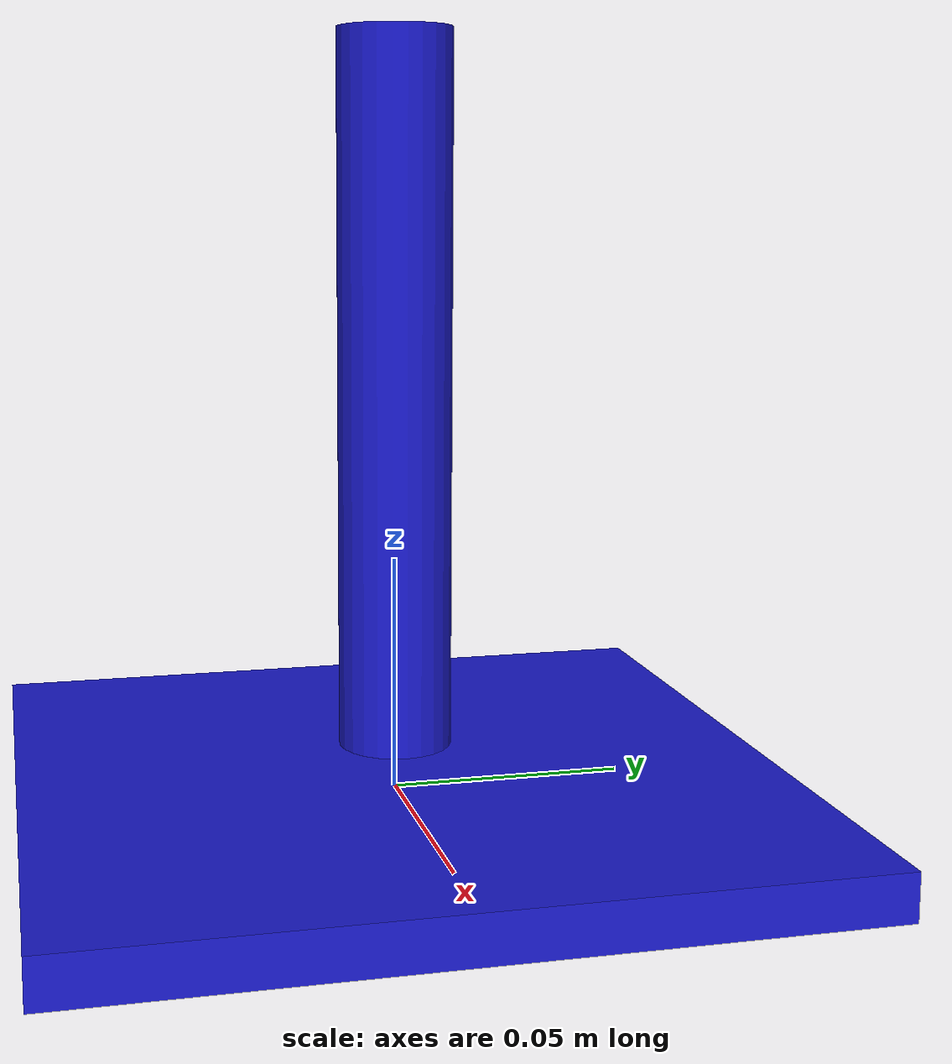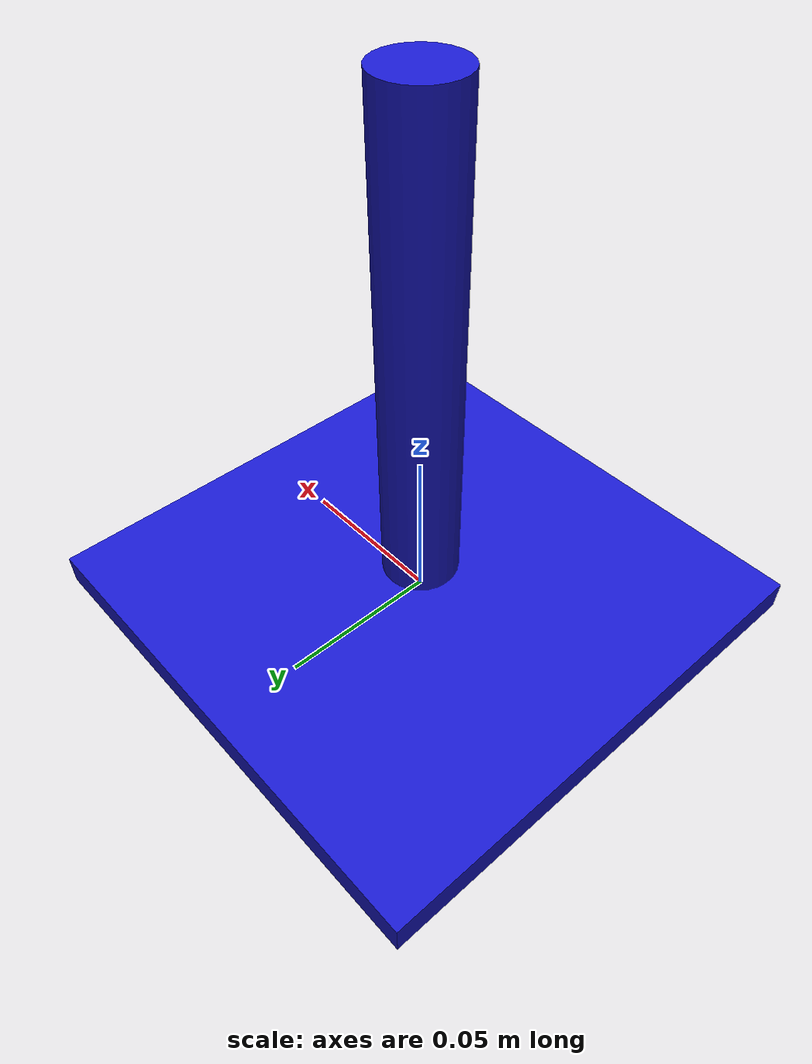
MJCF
<mujoco model="ring_stand">
  <asset>
    <texture name="tex_stand" type="2d" builtin="flat" rgb1="0.1 0.1 0.8" width="512" height="512"/>
    <material name="mat_stand" texture="tex_stand" shininess="0.5" specular="0.5"/>
  </asset>
  <worldbody>
    <body>
      <body name="object">
        <!-- 底座 (不可移动的基座，稍微重一点) -->
        <geom name="base_geom" type="box" size="0.08 0.08 0.005" material="mat_stand"
              density="50000" friction="2.0 0.005 0.0001" group="0"/>
        <geom name="base_vis" type="box" size="0.08 0.08 0.005" material="mat_stand"
              contype="0" conaffinity="0" group="1"/>

        <!-- 竖杆 -->
        <geom name="pole_geom" type="cylinder" size="0.012 0.075" pos="0 0 0.08499999999999999" material="mat_stand"
              density="1000" friction="0.5 0.005 0.0001" group="0"/>
        <geom name="pole_vis" type="cylinder" size="0.012 0.075" pos="0 0 0.08499999999999999" material="mat_stand"
              contype="0" conaffinity="0" group="1"/>

        <!-- 关键 Site: 用于判断圆环是否套到底部 -->
        <!-- 位于杆子根部 -->
        <site name="target_site" pos="0 0 0.02" size="0.002" rgba="0 1 0 0.5"/>

        <site name="bottom_site" pos="0 0 -0.01" size="0.002" rgba="0 0 0 0"/>
        <site name="top_site" pos="0 0 0.15" size="0.002" rgba="0 0 0 0"/>
      </body>
    </body>
  </worldbody>
</mujoco>
